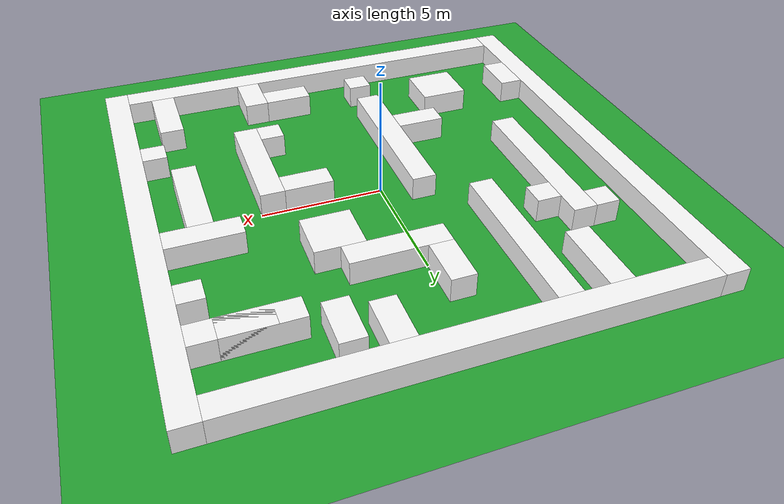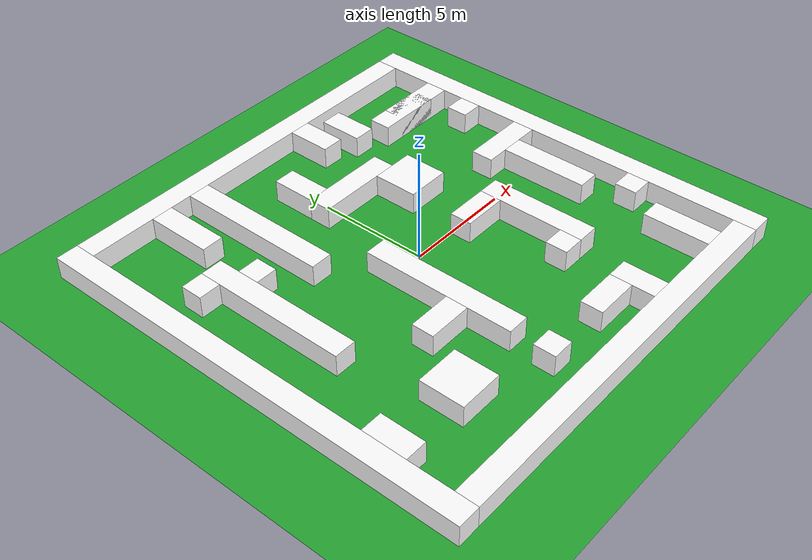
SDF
<?xml version="1.0"?>
<sdf version='1.10'>
  <world name='playground'>
    <physics name='1ms' type='ignored'>
      <max_step_size>0.005</max_step_size>
      <real_time_factor>1</real_time_factor>
      <real_time_update_rate>500</real_time_update_rate>
    </physics>
    <plugin name='gz::sim::systems::Physics' filename='gz-sim-physics-system'/>
    <plugin name='gz::sim::systems::UserCommands' filename='gz-sim-user-commands-system'/>
    <plugin name='gz::sim::systems::SceneBroadcaster' filename='gz-sim-scene-broadcaster-system'/>
    <plugin name='gz::sim::systems::Contact' filename='gz-sim-contact-system'/>
    <plugin filename="gz-sim-sensors-system" name="gz::sim::systems::Sensors">
          <render_engine>ogre2</render_engine>
    </plugin>
    <plugin filename="gz-sim-imu-system" name="gz::sim::systems::Imu"> </plugin>
    <gravity>0 0 -9.8000000000000007</gravity>
    <magnetic_field>5.5644999999999998e-06 2.2875799999999999e-05 -4.2388400000000002e-05</magnetic_field>
    <atmosphere type='adiabatic'/>
    <scene>
      <ambient>0.400000006 0.400000006 0.400000006 1</ambient>
      <background>0.699999988 0.699999988 0.699999988 1</background>
      <shadows>true</shadows>
    </scene>

    <model name='ground_plane'>
      <static>true</static>
      <link name='link'>
        <collision name='collision'>
          <geometry>
            <plane>
              <normal>0 0 1</normal>
              <size>100 100</size>
            </plane>
          </geometry>
          <surface>
            <friction>
              <ode/>
            </friction>
            <bounce/>
            <contact/>
          </surface>
        </collision>
        <visual name='visual'>
          <geometry>
            <plane>
              <normal>0 0 1</normal>
              <size>100 100</size>
            </plane>
          </geometry>
          <material>
            <script>
              <uri>file://media/materials/scripts/gazebo.material</uri>
              <name>Gazebo/Green</name>
            </script>
          </material>
        </visual>
        <pose>0 0 0 0 0 0</pose>
        <inertial>
          <pose>0 0 0 0 0 0</pose>
          <mass>1</mass>
          <inertia>
            <ixx>1</ixx>
            <ixy>0</ixy>
            <ixz>0</ixz>
            <iyy>1</iyy>
            <iyz>0</iyz>
            <izz>1</izz>
          </inertia>
        </inertial>
        <enable_wind>false</enable_wind>
      </link>
      <pose>0 0 0 0 0 0</pose>
      <self_collide>false</self_collide>
    </model>
    <model name='box_0'>
      <pose>9.5 0.0 0.5 0.0 0.0 0.0</pose>
      <link name='box_link'>
        <inertial>
          <inertia>
            <ixx>0.16666</ixx>
            <ixy>0</ixy>
            <ixz>0</ixz>
            <iyy>0.16666</iyy>
            <iyz>0</iyz>
            <izz>0.16666</izz>
          </inertia>
          <mass>1</mass>
          <pose>0 0 0 0 0 0</pose>
        </inertial>
        <collision name='box_collision'>
          <geometry>
            <box>
              <size>1 20 1</size>
            </box>
          </geometry>
          <surface>
            <friction>
              <ode/>
            </friction>
            <bounce/>
            <contact/>
          </surface>
        </collision>
        <visual name='box_visual'>
          <geometry>
            <box>
              <size>1 20 1</size>
            </box>
          </geometry>
          <material>
            <ambient>1 1 1 1</ambient>
            <diffuse>1 1 1 1</diffuse>
            <specular>1 1 1 1</specular>
          </material>
        </visual>
        <pose>0 0 0 0 0 0</pose>
        <enable_wind>false</enable_wind>
      </link>
      <static>true</static>
      <self_collide>false</self_collide>
    </model>
    <model name='box_1'>
      <pose>-9.5 0.0 0.5 0.0 0.0 0.0</pose>
      <link name='box_link'>
        <inertial>
          <inertia>
            <ixx>0.16666</ixx>
            <ixy>0</ixy>
            <ixz>0</ixz>
            <iyy>0.16666</iyy>
            <iyz>0</iyz>
            <izz>0.16666</izz>
          </inertia>
          <mass>1</mass>
          <pose>0 0 0 0 0 0</pose>
        </inertial>
        <collision name='box_collision'>
          <geometry>
            <box>
              <size>1 20 1</size>
            </box>
          </geometry>
          <surface>
            <friction>
              <ode/>
            </friction>
            <bounce/>
            <contact/>
          </surface>
        </collision>
        <visual name='box_visual'>
          <geometry>
            <box>
              <size>1 20 1</size>
            </box>
          </geometry>
          <material>
            <ambient>1 1 1 1</ambient>
            <diffuse>1 1 1 1</diffuse>
            <specular>1 1 1 1</specular>
          </material>
        </visual>
        <pose>0 0 0 0 0 0</pose>
        <enable_wind>false</enable_wind>
      </link>
      <static>true</static>
      <self_collide>false</self_collide>
    </model>
    <model name='box_2'>
      <pose>0.0 9.5 0.5 0.0 0.0 0.0</pose>
      <link name='box_link'>
        <inertial>
          <inertia>
            <ixx>0.16666</ixx>
            <ixy>0</ixy>
            <ixz>0</ixz>
            <iyy>0.16666</iyy>
            <iyz>0</iyz>
            <izz>0.16666</izz>
          </inertia>
          <mass>1</mass>
          <pose>0 0 0 0 0 0</pose>
        </inertial>
        <collision name='box_collision'>
          <geometry>
            <box>
              <size>18 1 1</size>
            </box>
          </geometry>
          <surface>
            <friction>
              <ode/>
            </friction>
            <bounce/>
            <contact/>
          </surface>
        </collision>
        <visual name='box_visual'>
          <geometry>
            <box>
              <size>18 1 1</size>
            </box>
          </geometry>
          <material>
            <ambient>1 1 1 1</ambient>
            <diffuse>1 1 1 1</diffuse>
            <specular>1 1 1 1</specular>
          </material>
        </visual>
        <pose>0 0 0 0 0 0</pose>
        <enable_wind>false</enable_wind>
      </link>
      <static>true</static>
      <self_collide>false</self_collide>
    </model>
    <model name='box_3'>
      <pose>0.0 -9.5 0.5 0.0 0.0 0.0</pose>
      <link name='box_link'>
        <inertial>
          <inertia>
            <ixx>0.16666</ixx>
            <ixy>0</ixy>
            <ixz>0</ixz>
            <iyy>0.16666</iyy>
            <iyz>0</iyz>
            <izz>0.16666</izz>
          </inertia>
          <mass>1</mass>
          <pose>0 0 0 0 0 0</pose>
        </inertial>
        <collision name='box_collision'>
          <geometry>
            <box>
              <size>18 1 1</size>
            </box>
          </geometry>
          <surface>
            <friction>
              <ode/>
            </friction>
            <bounce/>
            <contact/>
          </surface>
        </collision>
        <visual name='box_visual'>
          <geometry>
            <box>
              <size>18 1 1</size>
            </box>
          </geometry>
          <material>
            <ambient>1 1 1 1</ambient>
            <diffuse>1 1 1 1</diffuse>
            <specular>1 1 1 1</specular>
          </material>
        </visual>
        <pose>0 0 0 0 0 0</pose>
        <enable_wind>false</enable_wind>
      </link>
      <static>true</static>
      <self_collide>false</self_collide>
    </model>
    <model name='box_4'>
      <pose>-5.5 7.5 0.5 0.0 0.0 0.0</pose>
      <link name='box_link'>
        <inertial>
          <inertia>
            <ixx>0.16666</ixx>
            <ixy>0</ixy>
            <ixz>0</ixz>
            <iyy>0.16666</iyy>
            <iyz>0</iyz>
            <izz>0.16666</izz>
          </inertia>
          <mass>1</mass>
          <pose>0 0 0 0 0 0</pose>
        </inertial>
        <collision name='box_collision'>
          <geometry>
            <box>
              <size>1 3 1</size>
            </box>
          </geometry>
          <surface>
            <friction>
              <ode/>
            </friction>
            <bounce/>
            <contact/>
          </surface>
        </collision>
        <visual name='box_visual'>
          <geometry>
            <box>
              <size>1 3 1</size>
            </box>
          </geometry>
          <material>
            <ambient>1 1 1 1</ambient>
            <diffuse>1 1 1 1</diffuse>
            <specular>1 1 1 1</specular>
          </material>
        </visual>
        <pose>0 0 0 0 0 0</pose>
        <enable_wind>false</enable_wind>
      </link>
      <static>true</static>
      <self_collide>false</self_collide>
    </model>
    <model name='box_5'>
      <pose>-3.5 5.5 0.5 0.0 0.0 0.0</pose>
      <link name='box_link'>
        <inertial>
          <inertia>
            <ixx>0.16666</ixx>
            <ixy>0</ixy>
            <ixz>0</ixz>
            <iyy>0.16666</iyy>
            <iyz>0</iyz>
            <izz>0.16666</izz>
          </inertia>
          <mass>1</mass>
          <pose>0 0 0 0 0 0</pose>
        </inertial>
        <collision name='box_collision'>
          <geometry>
            <box>
              <size>1 7 1</size>
            </box>
          </geometry>
          <surface>
            <friction>
              <ode/>
            </friction>
            <bounce/>
            <contact/>
          </surface>
        </collision>
        <visual name='box_visual'>
          <geometry>
            <box>
              <size>1 7 1</size>
            </box>
          </geometry>
          <material>
            <ambient>1 1 1 1</ambient>
            <diffuse>1 1 1 1</diffuse>
            <specular>1 1 1 1</specular>
          </material>
        </visual>
        <pose>0 0 0 0 0 0</pose>
        <enable_wind>false</enable_wind>
      </link>
      <static>true</static>
      <self_collide>false</self_collide>
    </model>
    <model name='box_6'>
      <pose>-0.5 6.0 0.5 0.0 0.0 0.0</pose>
      <link name='box_link'>
        <inertial>
          <inertia>
            <ixx>0.16666</ixx>
            <ixy>0</ixy>
            <ixz>0</ixz>
            <iyy>0.16666</iyy>
            <iyz>0</iyz>
            <izz>0.16666</izz>
          </inertia>
          <mass>1</mass>
          <pose>0 0 0 0 0 0</pose>
        </inertial>
        <collision name='box_collision'>
          <geometry>
            <box>
              <size>1 2 1</size>
            </box>
          </geometry>
          <surface>
            <friction>
              <ode/>
            </friction>
            <bounce/>
            <contact/>
          </surface>
        </collision>
        <visual name='box_visual'>
          <geometry>
            <box>
              <size>1 2 1</size>
            </box>
          </geometry>
          <material>
            <ambient>1 1 1 1</ambient>
            <diffuse>1 1 1 1</diffuse>
            <specular>1 1 1 1</specular>
          </material>
        </visual>
        <pose>0 0 0 0 0 0</pose>
        <enable_wind>false</enable_wind>
      </link>
      <static>true</static>
      <self_collide>false</self_collide>
    </model>
    <model name='box_7'>
      <pose>2.5 8.0 0.5 0.0 0.0 0.0</pose>
      <link name='box_link'>
        <inertial>
          <inertia>
            <ixx>0.16666</ixx>
            <ixy>0</ixy>
            <ixz>0</ixz>
            <iyy>0.16666</iyy>
            <iyz>0</iyz>
            <izz>0.16666</izz>
          </inertia>
          <mass>1</mass>
          <pose>0 0 0 0 0 0</pose>
        </inertial>
        <collision name='box_collision'>
          <geometry>
            <box>
              <size>1 2 1</size>
            </box>
          </geometry>
          <surface>
            <friction>
              <ode/>
            </friction>
            <bounce/>
            <contact/>
          </surface>
        </collision>
        <visual name='box_visual'>
          <geometry>
            <box>
              <size>1 2 1</size>
            </box>
          </geometry>
          <material>
            <ambient>1 1 1 1</ambient>
            <diffuse>1 1 1 1</diffuse>
            <specular>1 1 1 1</specular>
          </material>
        </visual>
        <pose>0 0 0 0 0 0</pose>
        <enable_wind>false</enable_wind>
      </link>
      <static>true</static>
      <self_collide>false</self_collide>
    </model>
    <model name='box_8'>
      <pose>-6.5 1.5 0.5 0.0 0.0 0.0</pose>
      <link name='box_link'>
        <inertial>
          <inertia>
            <ixx>0.16666</ixx>
            <ixy>0</ixy>
            <ixz>0</ixz>
            <iyy>0.16666</iyy>
            <iyz>0</iyz>
            <izz>0.16666</izz>
          </inertia>
          <mass>1</mass>
          <pose>0 0 0 0 0 0</pose>
        </inertial>
        <collision name='box_collision'>
          <geometry>
            <box>
              <size>1 7 1</size>
            </box>
          </geometry>
          <surface>
            <friction>
              <ode/>
            </friction>
            <bounce/>
            <contact/>
          </surface>
        </collision>
        <visual name='box_visual'>
          <geometry>
            <box>
              <size>1 7 1</size>
            </box>
          </geometry>
          <material>
            <ambient>1 1 1 1</ambient>
            <diffuse>1 1 1 1</diffuse>
            <specular>1 1 1 1</specular>
          </material>
        </visual>
        <pose>0 0 0 0 0 0</pose>
        <enable_wind>false</enable_wind>
      </link>
      <static>true</static>
      <self_collide>false</self_collide>
    </model>
    <model name='box_9'>
      <pose>-1.5 -2.5 0.5 0.0 0.0 0.0</pose>
      <link name='box_link'>
        <inertial>
          <inertia>
            <ixx>0.16666</ixx>
            <ixy>0</ixy>
            <ixz>0</ixz>
            <iyy>0.16666</iyy>
            <iyz>0</iyz>
            <izz>0.16666</izz>
          </inertia>
          <mass>1</mass>
          <pose>0 0 0 0 0 0</pose>
        </inertial>
        <collision name='box_collision'>
          <geometry>
            <box>
              <size>1 7 1</size>
            </box>
          </geometry>
          <surface>
            <friction>
              <ode/>
            </friction>
            <bounce/>
            <contact/>
          </surface>
        </collision>
        <visual name='box_visual'>
          <geometry>
            <box>
              <size>1 7 1</size>
            </box>
          </geometry>
          <material>
            <ambient>1 1 1 1</ambient>
            <diffuse>1 1 1 1</diffuse>
            <specular>1 1 1 1</specular>
          </material>
        </visual>
        <pose>0 0 0 0 0 0</pose>
        <enable_wind>false</enable_wind>
      </link>
      <static>true</static>
      <self_collide>false</self_collide>
    </model>
    <model name='box_10'>
      <pose>4.5 -2.5 0.5 0.0 0.0 0.0</pose>
      <link name='box_link'>
        <inertial>
          <inertia>
            <ixx>0.16666</ixx>
            <ixy>0</ixy>
            <ixz>0</ixz>
            <iyy>0.16666</iyy>
            <iyz>0</iyz>
            <izz>0.16666</izz>
          </inertia>
          <mass>1</mass>
          <pose>0 0 0 0 0 0</pose>
        </inertial>
        <collision name='box_collision'>
          <geometry>
            <box>
              <size>1 5 1</size>
            </box>
          </geometry>
          <surface>
            <friction>
              <ode/>
            </friction>
            <bounce/>
            <contact/>
          </surface>
        </collision>
        <visual name='box_visual'>
          <geometry>
            <box>
              <size>1 5 1</size>
            </box>
          </geometry>
          <material>
            <ambient>1 1 1 1</ambient>
            <diffuse>1 1 1 1</diffuse>
            <specular>1 1 1 1</specular>
          </material>
        </visual>
        <pose>0 0 0 0 0 0</pose>
        <enable_wind>false</enable_wind>
      </link>
      <static>true</static>
      <self_collide>false</self_collide>
    </model>
    <model name='box_11'>
      <pose>7.5 -1.0 0.5 0.0 0.0 0.0</pose>
      <link name='box_link'>
        <inertial>
          <inertia>
            <ixx>0.16666</ixx>
            <ixy>0</ixy>
            <ixz>0</ixz>
            <iyy>0.16666</iyy>
            <iyz>0</iyz>
            <izz>0.16666</izz>
          </inertia>
          <mass>1</mass>
          <pose>0 0 0 0 0 0</pose>
        </inertial>
        <collision name='box_collision'>
          <geometry>
            <box>
              <size>1 4 1</size>
            </box>
          </geometry>
          <surface>
            <friction>
              <ode/>
            </friction>
            <bounce/>
            <contact/>
          </surface>
        </collision>
        <visual name='box_visual'>
          <geometry>
            <box>
              <size>1 4 1</size>
            </box>
          </geometry>
          <material>
            <ambient>1 1 1 1</ambient>
            <diffuse>1 1 1 1</diffuse>
            <specular>1 1 1 1</specular>
          </material>
        </visual>
        <pose>0 0 0 0 0 0</pose>
        <enable_wind>false</enable_wind>
      </link>
      <static>true</static>
      <self_collide>false</self_collide>
    </model>
    <model name='box_12'>
      <pose>7.5 -7.5 0.5 0.0 0.0 0.0</pose>
      <link name='box_link'>
        <inertial>
          <inertia>
            <ixx>0.16666</ixx>
            <ixy>0</ixy>
            <ixz>0</ixz>
            <iyy>0.16666</iyy>
            <iyz>0</iyz>
            <izz>0.16666</izz>
          </inertia>
          <mass>1</mass>
          <pose>0 0 0 0 0 0</pose>
        </inertial>
        <collision name='box_collision'>
          <geometry>
            <box>
              <size>1 3 1</size>
            </box>
          </geometry>
          <surface>
            <friction>
              <ode/>
            </friction>
            <bounce/>
            <contact/>
          </surface>
        </collision>
        <visual name='box_visual'>
          <geometry>
            <box>
              <size>1 3 1</size>
            </box>
          </geometry>
          <material>
            <ambient>1 1 1 1</ambient>
            <diffuse>1 1 1 1</diffuse>
            <specular>1 1 1 1</specular>
          </material>
        </visual>
        <pose>0 0 0 0 0 0</pose>
        <enable_wind>false</enable_wind>
      </link>
      <static>true</static>
      <self_collide>false</self_collide>
    </model>
    <model name='box_13'>
      <pose>3.0 3.0 0.5 0.0 0.0 0.0</pose>
      <link name='box_link'>
        <inertial>
          <inertia>
            <ixx>0.16666</ixx>
            <ixy>0</ixy>
            <ixz>0</ixz>
            <iyy>0.16666</iyy>
            <iyz>0</iyz>
            <izz>0.16666</izz>
          </inertia>
          <mass>1</mass>
          <pose>0 0 0 0 0 0</pose>
        </inertial>
        <collision name='box_collision'>
          <geometry>
            <box>
              <size>2 2 1</size>
            </box>
          </geometry>
          <surface>
            <friction>
              <ode/>
            </friction>
            <bounce/>
            <contact/>
          </surface>
        </collision>
        <visual name='box_visual'>
          <geometry>
            <box>
              <size>2 2 1</size>
            </box>
          </geometry>
          <material>
            <ambient>1 1 1 1</ambient>
            <diffuse>1 1 1 1</diffuse>
            <specular>1 1 1 1</specular>
          </material>
        </visual>
        <pose>0 0 0 0 0 0</pose>
        <enable_wind>false</enable_wind>
      </link>
      <static>true</static>
      <self_collide>false</self_collide>
    </model>
    <model name='box_14'>
      <pose>-5.0 -6.0 0.5 0.0 0.0 0.0</pose>
      <link name='box_link'>
        <inertial>
          <inertia>
            <ixx>0.16666</ixx>
            <ixy>0</ixy>
            <ixz>0</ixz>
            <iyy>0.16666</iyy>
            <iyz>0</iyz>
            <izz>0.16666</izz>
          </inertia>
          <mass>1</mass>
          <pose>0 0 0 0 0 0</pose>
        </inertial>
        <collision name='box_collision'>
          <geometry>
            <box>
              <size>2 2 1</size>
            </box>
          </geometry>
          <surface>
            <friction>
              <ode/>
            </friction>
            <bounce/>
            <contact/>
          </surface>
        </collision>
        <visual name='box_visual'>
          <geometry>
            <box>
              <size>2 2 1</size>
            </box>
          </geometry>
          <material>
            <ambient>1 1 1 1</ambient>
            <diffuse>1 1 1 1</diffuse>
            <specular>1 1 1 1</specular>
          </material>
        </visual>
        <pose>0 0 0 0 0 0</pose>
        <enable_wind>false</enable_wind>
      </link>
      <static>true</static>
      <self_collide>false</self_collide>
    </model>
    <model name='box_15'>
      <pose>-8.5 -6.0 0.5 0.0 0.0 0.0</pose>
      <link name='box_link'>
        <inertial>
          <inertia>
            <ixx>0.16666</ixx>
            <ixy>0</ixy>
            <ixz>0</ixz>
            <iyy>0.16666</iyy>
            <iyz>0</iyz>
            <izz>0.16666</izz>
          </inertia>
          <mass>1</mass>
          <pose>0 0 0 0 0 0</pose>
        </inertial>
        <collision name='box_collision'>
          <geometry>
            <box>
              <size>1 2 1</size>
            </box>
          </geometry>
          <surface>
            <friction>
              <ode/>
            </friction>
            <bounce/>
            <contact/>
          </surface>
        </collision>
        <visual name='box_visual'>
          <geometry>
            <box>
              <size>1 2 1</size>
            </box>
          </geometry>
          <material>
            <ambient>1 1 1 1</ambient>
            <diffuse>1 1 1 1</diffuse>
            <specular>1 1 1 1</specular>
          </material>
        </visual>
        <pose>0 0 0 0 0 0</pose>
        <enable_wind>false</enable_wind>
      </link>
      <static>true</static>
      <self_collide>false</self_collide>
    </model>
    <model name='box_16'>
      <pose>-1.5 -7.5 0.5 0.0 0.0 0.0</pose>
      <link name='box_link'>
        <inertial>
          <inertia>
            <ixx>0.16666</ixx>
            <ixy>0</ixy>
            <ixz>0</ixz>
            <iyy>0.16666</iyy>
            <iyz>0</iyz>
            <izz>0.16666</izz>
          </inertia>
          <mass>1</mass>
          <pose>0 0 0 0 0 0</pose>
        </inertial>
        <collision name='box_collision'>
          <geometry>
            <box>
              <size>1 1 1</size>
            </box>
          </geometry>
          <surface>
            <friction>
              <ode/>
            </friction>
            <bounce/>
            <contact/>
          </surface>
        </collision>
        <visual name='box_visual'>
          <geometry>
            <box>
              <size>1 1 1</size>
            </box>
          </geometry>
          <material>
            <ambient>1 1 1 1</ambient>
            <diffuse>1 1 1 1</diffuse>
            <specular>1 1 1 1</specular>
          </material>
        </visual>
        <pose>0 0 0 0 0 0</pose>
        <enable_wind>false</enable_wind>
      </link>
      <static>true</static>
      <self_collide>false</self_collide>
    </model>
    <model name='box_17'>
      <pose>3.5 -8.0 0.5 0.0 0.0 0.0</pose>
      <link name='box_link'>
        <inertial>
          <inertia>
            <ixx>0.16666</ixx>
            <ixy>0</ixy>
            <ixz>0</ixz>
            <iyy>0.16666</iyy>
            <iyz>0</iyz>
            <izz>0.16666</izz>
          </inertia>
          <mass>1</mass>
          <pose>0 0 0 0 0 0</pose>
        </inertial>
        <collision name='box_collision'>
          <geometry>
            <box>
              <size>1 2 1</size>
            </box>
          </geometry>
          <surface>
            <friction>
              <ode/>
            </friction>
            <bounce/>
            <contact/>
          </surface>
        </collision>
        <visual name='box_visual'>
          <geometry>
            <box>
              <size>1 2 1</size>
            </box>
          </geometry>
          <material>
            <ambient>1 1 1 1</ambient>
            <diffuse>1 1 1 1</diffuse>
            <specular>1 1 1 1</specular>
          </material>
        </visual>
        <pose>0 0 0 0 0 0</pose>
        <enable_wind>false</enable_wind>
      </link>
      <static>true</static>
      <self_collide>false</self_collide>
    </model>
    <model name='box_18'>
      <pose>4.0 7.5 0.5 0.0 0.0 0.0</pose>
      <link name='box_link'>
        <inertial>
          <inertia>
            <ixx>0.16666</ixx>
            <ixy>0</ixy>
            <ixz>0</ixz>
            <iyy>0.16666</iyy>
            <iyz>0</iyz>
            <izz>0.16666</izz>
          </inertia>
          <mass>1</mass>
          <pose>0 0 0 0 0 0</pose>
        </inertial>
        <collision name='box_collision'>
          <geometry>
            <box>
              <size>1 2 1</size>
            </box>
          </geometry>
          <surface>
            <friction>
              <ode/>
            </friction>
            <bounce/>
            <contact/>
          </surface>
        </collision>
        <visual name='box_visual'>
          <geometry>
            <box>
              <size>1 2 1</size>
            </box>
          </geometry>
          <material>
            <ambient>1 1 1 1</ambient>
            <diffuse>1 1 1 1</diffuse>
            <specular>1 1 1 1</specular>
          </material>
        </visual>
        <pose>0 0 0 0 0 0</pose>
        <enable_wind>false</enable_wind>
      </link>
      <static>true</static>
      <self_collide>false</self_collide>
    </model>
    <model name='box_19'>
      <pose>-7.5 4.5 0.5 0.0 0.0 0.0</pose>
      <link name='box_link'>
        <inertial>
          <inertia>
            <ixx>0.16666</ixx>
            <ixy>0</ixy>
            <ixz>0</ixz>
            <iyy>0.16666</iyy>
            <iyz>0</iyz>
            <izz>0.16666</izz>
          </inertia>
          <mass>1</mass>
          <pose>0 0 0 0 0 0</pose>
        </inertial>
        <collision name='box_collision'>
          <geometry>
            <box>
              <size>1 1 1</size>
            </box>
          </geometry>
          <surface>
            <friction>
              <ode/>
            </friction>
            <bounce/>
            <contact/>
          </surface>
        </collision>
        <visual name='box_visual'>
          <geometry>
            <box>
              <size>1 1 1</size>
            </box>
          </geometry>
          <material>
            <ambient>1 1 1 1</ambient>
            <diffuse>1 1 1 1</diffuse>
            <specular>1 1 1 1</specular>
          </material>
        </visual>
        <pose>0 0 0 0 0 0</pose>
        <enable_wind>false</enable_wind>
      </link>
      <static>true</static>
      <self_collide>false</self_collide>
    </model>
    <model name='box_20'>
      <pose>-5.5 3.5 0.5 0.0 0.0 0.0</pose>
      <link name='box_link'>
        <inertial>
          <inertia>
            <ixx>0.16666</ixx>
            <ixy>0</ixy>
            <ixz>0</ixz>
            <iyy>0.16666</iyy>
            <iyz>0</iyz>
            <izz>0.16666</izz>
          </inertia>
          <mass>1</mass>
          <pose>0 0 0 0 0 0</pose>
        </inertial>
        <collision name='box_collision'>
          <geometry>
            <box>
              <size>1 1 1</size>
            </box>
          </geometry>
          <surface>
            <friction>
              <ode/>
            </friction>
            <bounce/>
            <contact/>
          </surface>
        </collision>
        <visual name='box_visual'>
          <geometry>
            <box>
              <size>1 1 1</size>
            </box>
          </geometry>
          <material>
            <ambient>1 1 1 1</ambient>
            <diffuse>1 1 1 1</diffuse>
            <specular>1 1 1 1</specular>
          </material>
        </visual>
        <pose>0 0 0 0 0 0</pose>
        <enable_wind>false</enable_wind>
      </link>
      <static>true</static>
      <self_collide>false</self_collide>
    </model>
    <model name='box_21'>
      <pose>3.5 -4.5 0.5 0.0 0.0 0.0</pose>
      <link name='box_link'>
        <inertial>
          <inertia>
            <ixx>0.16666</ixx>
            <ixy>0</ixy>
            <ixz>0</ixz>
            <iyy>0.16666</iyy>
            <iyz>0</iyz>
            <izz>0.16666</izz>
          </inertia>
          <mass>1</mass>
          <pose>0 0 0 0 0 0</pose>
        </inertial>
        <collision name='box_collision'>
          <geometry>
            <box>
              <size>1 1 1</size>
            </box>
          </geometry>
          <surface>
            <friction>
              <ode/>
            </friction>
            <bounce/>
            <contact/>
          </surface>
        </collision>
        <visual name='box_visual'>
          <geometry>
            <box>
              <size>1 1 1</size>
            </box>
          </geometry>
          <material>
            <ambient>1 1 1 1</ambient>
            <diffuse>1 1 1 1</diffuse>
            <specular>1 1 1 1</specular>
          </material>
        </visual>
        <pose>0 0 0 0 0 0</pose>
        <enable_wind>false</enable_wind>
      </link>
      <static>true</static>
      <self_collide>false</self_collide>
    </model>
    <model name='box_22'>
      <pose>8.5 4.5 0.5 0.0 0.0 0.0</pose>
      <link name='box_link'>
        <inertial>
          <inertia>
            <ixx>0.16666</ixx>
            <ixy>0</ixy>
            <ixz>0</ixz>
            <iyy>0.16666</iyy>
            <iyz>0</iyz>
            <izz>0.16666</izz>
          </inertia>
          <mass>1</mass>
          <pose>0 0 0 0 0 0</pose>
        </inertial>
        <collision name='box_collision'>
          <geometry>
            <box>
              <size>1 1 1</size>
            </box>
          </geometry>
          <surface>
            <friction>
              <ode/>
            </friction>
            <bounce/>
            <contact/>
          </surface>
        </collision>
        <visual name='box_visual'>
          <geometry>
            <box>
              <size>1 1 1</size>
            </box>
          </geometry>
          <material>
            <ambient>1 1 1 1</ambient>
            <diffuse>1 1 1 1</diffuse>
            <specular>1 1 1 1</specular>
          </material>
        </visual>
        <pose>0 0 0 0 0 0</pose>
        <enable_wind>false</enable_wind>
      </link>
      <static>true</static>
      <self_collide>false</self_collide>
    </model>
    <model name='box_23'>
      <pose>8.5 -4.5 0.5 0.0 0.0 0.0</pose>
      <link name='box_link'>
        <inertial>
          <inertia>
            <ixx>0.16666</ixx>
            <ixy>0</ixy>
            <ixz>0</ixz>
            <iyy>0.16666</iyy>
            <iyz>0</iyz>
            <izz>0.16666</izz>
          </inertia>
          <mass>1</mass>
          <pose>0 0 0 0 0 0</pose>
        </inertial>
        <collision name='box_collision'>
          <geometry>
            <box>
              <size>1 1 1</size>
            </box>
          </geometry>
          <surface>
            <friction>
              <ode/>
            </friction>
            <bounce/>
            <contact/>
          </surface>
        </collision>
        <visual name='box_visual'>
          <geometry>
            <box>
              <size>1 1 1</size>
            </box>
          </geometry>
          <material>
            <ambient>1 1 1 1</ambient>
            <diffuse>1 1 1 1</diffuse>
            <specular>1 1 1 1</specular>
          </material>
        </visual>
        <pose>0 0 0 0 0 0</pose>
        <enable_wind>false</enable_wind>
      </link>
      <static>true</static>
      <self_collide>false</self_collide>
    </model>
    <model name='box_24'>
      <pose>7.0 6.5 0.5 0.0 0.0 0.0</pose>
      <link name='box_link'>
        <inertial>
          <inertia>
            <ixx>0.16666</ixx>
            <ixy>0</ixy>
            <ixz>0</ixz>
            <iyy>0.16666</iyy>
            <iyz>0</iyz>
            <izz>0.16666</izz>
          </inertia>
          <mass>1</mass>
          <pose>0 0 0 0 0 0</pose>
        </inertial>
        <collision name='box_collision'>
          <geometry>
            <box>
              <size>2 1 1</size>
            </box>
          </geometry>
          <surface>
            <friction>
              <ode/>
            </friction>
            <bounce/>
            <contact/>
          </surface>
        </collision>
        <visual name='box_visual'>
          <geometry>
            <box>
              <size>2 1 1</size>
            </box>
          </geometry>
          <material>
            <ambient>1 1 1 1</ambient>
            <diffuse>1 1 1 1</diffuse>
            <specular>1 1 1 1</specular>
          </material>
        </visual>
        <pose>0 0 0 0 0 0</pose>
        <enable_wind>false</enable_wind>
      </link>
      <static>true</static>
      <self_collide>false</self_collide>
    </model>
    <model name='box_25'>
      <pose>1.0 4.5 0.5 0.0 0.0 0.0</pose>
      <link name='box_link'>
        <inertial>
          <inertia>
            <ixx>0.16666</ixx>
            <ixy>0</ixy>
            <ixz>0</ixz>
            <iyy>0.16666</iyy>
            <iyz>0</iyz>
            <izz>0.16666</izz>
          </inertia>
          <mass>1</mass>
          <pose>0 0 0 0 0 0</pose>
        </inertial>
        <collision name='box_collision'>
          <geometry>
            <box>
              <size>4 1 1</size>
            </box>
          </geometry>
          <surface>
            <friction>
              <ode/>
            </friction>
            <bounce/>
            <contact/>
          </surface>
        </collision>
        <visual name='box_visual'>
          <geometry>
            <box>
              <size>4 1 1</size>
            </box>
          </geometry>
          <material>
            <ambient>1 1 1 1</ambient>
            <diffuse>1 1 1 1</diffuse>
            <specular>1 1 1 1</specular>
          </material>
        </visual>
        <pose>0 0 0 0 0 0</pose>
        <enable_wind>false</enable_wind>
      </link>
      <static>true</static>
      <self_collide>false</self_collide>
    </model>
    <model name='box_26'>
      <pose>7.0 6.5 0.5 0.0 0.0 0.0</pose>
      <link name='box_link'>
        <inertial>
          <inertia>
            <ixx>0.16666</ixx>
            <ixy>0</ixy>
            <ixz>0</ixz>
            <iyy>0.16666</iyy>
            <iyz>0</iyz>
            <izz>0.16666</izz>
          </inertia>
          <mass>1</mass>
          <pose>0 0 0 0 0 0</pose>
        </inertial>
        <collision name='box_collision'>
          <geometry>
            <box>
              <size>4 1 1</size>
            </box>
          </geometry>
          <surface>
            <friction>
              <ode/>
            </friction>
            <bounce/>
            <contact/>
          </surface>
        </collision>
        <visual name='box_visual'>
          <geometry>
            <box>
              <size>4 1 1</size>
            </box>
          </geometry>
          <material>
            <ambient>1 1 1 1</ambient>
            <diffuse>1 1 1 1</diffuse>
            <specular>1 1 1 1</specular>
          </material>
        </visual>
        <pose>0 0 0 0 0 0</pose>
        <enable_wind>false</enable_wind>
      </link>
      <static>true</static>
      <self_collide>false</self_collide>
    </model>
    <model name='box_27'>
      <pose>7.5 1.5 0.5 0.0 0.0 0.0</pose>
      <link name='box_link'>
        <inertial>
          <inertia>
            <ixx>0.16666</ixx>
            <ixy>0</ixy>
            <ixz>0</ixz>
            <iyy>0.16666</iyy>
            <iyz>0</iyz>
            <izz>0.16666</izz>
          </inertia>
          <mass>1</mass>
          <pose>0 0 0 0 0 0</pose>
        </inertial>
        <collision name='box_collision'>
          <geometry>
            <box>
              <size>3 1 1</size>
            </box>
          </geometry>
          <surface>
            <friction>
              <ode/>
            </friction>
            <bounce/>
            <contact/>
          </surface>
        </collision>
        <visual name='box_visual'>
          <geometry>
            <box>
              <size>3 1 1</size>
            </box>
          </geometry>
          <material>
            <ambient>1 1 1 1</ambient>
            <diffuse>1 1 1 1</diffuse>
            <specular>1 1 1 1</specular>
          </material>
        </visual>
        <pose>0 0 0 0 0 0</pose>
        <enable_wind>false</enable_wind>
      </link>
      <static>true</static>
      <self_collide>false</self_collide>
    </model>
    <model name='box_28'>
      <pose>3.0 -0.5 0.5 0.0 0.0 0.0</pose>
      <link name='box_link'>
        <inertial>
          <inertia>
            <ixx>0.16666</ixx>
            <ixy>0</ixy>
            <ixz>0</ixz>
            <iyy>0.16666</iyy>
            <iyz>0</iyz>
            <izz>0.16666</izz>
          </inertia>
          <mass>1</mass>
          <pose>0 0 0 0 0 0</pose>
        </inertial>
        <collision name='box_collision'>
          <geometry>
            <box>
              <size>2 1 1</size>
            </box>
          </geometry>
          <surface>
            <friction>
              <ode/>
            </friction>
            <bounce/>
            <contact/>
          </surface>
        </collision>
        <visual name='box_visual'>
          <geometry>
            <box>
              <size>2 1 1</size>
            </box>
          </geometry>
          <material>
            <ambient>1 1 1 1</ambient>
            <diffuse>1 1 1 1</diffuse>
            <specular>1 1 1 1</specular>
          </material>
        </visual>
        <pose>0 0 0 0 0 0</pose>
        <enable_wind>false</enable_wind>
      </link>
      <static>true</static>
      <self_collide>false</self_collide>
    </model>
    <model name='box_29'>
      <pose>2.0 -7.5 0.5 0.0 0.0 0.0</pose>
      <link name='box_link'>
        <inertial>
          <inertia>
            <ixx>0.16666</ixx>
            <ixy>0</ixy>
            <ixz>0</ixz>
            <iyy>0.16666</iyy>
            <iyz>0</iyz>
            <izz>0.16666</izz>
          </inertia>
          <mass>1</mass>
          <pose>0 0 0 0 0 0</pose>
        </inertial>
        <collision name='box_collision'>
          <geometry>
            <box>
              <size>2 1 1</size>
            </box>
          </geometry>
          <surface>
            <friction>
              <ode/>
            </friction>
            <bounce/>
            <contact/>
          </surface>
        </collision>
        <visual name='box_visual'>
          <geometry>
            <box>
              <size>2 1 1</size>
            </box>
          </geometry>
          <material>
            <ambient>1 1 1 1</ambient>
            <diffuse>1 1 1 1</diffuse>
            <specular>1 1 1 1</specular>
          </material>
        </visual>
        <pose>0 0 0 0 0 0</pose>
        <enable_wind>false</enable_wind>
      </link>
      <static>true</static>
      <self_collide>false</self_collide>
    </model>
    <model name='box_30'>
      <pose>-3.0 -3.5 0.5 0.0 0.0 0.0</pose>
      <link name='box_link'>
        <inertial>
          <inertia>
            <ixx>0.16666</ixx>
            <ixy>0</ixy>
            <ixz>0</ixz>
            <iyy>0.16666</iyy>
            <iyz>0</iyz>
            <izz>0.16666</izz>
          </inertia>
          <mass>1</mass>
          <pose>0 0 0 0 0 0</pose>
        </inertial>
        <collision name='box_collision'>
          <geometry>
            <box>
              <size>2 1 1</size>
            </box>
          </geometry>
          <surface>
            <friction>
              <ode/>
            </friction>
            <bounce/>
            <contact/>
          </surface>
        </collision>
        <visual name='box_visual'>
          <geometry>
            <box>
              <size>2 1 1</size>
            </box>
          </geometry>
          <material>
            <ambient>1 1 1 1</ambient>
            <diffuse>1 1 1 1</diffuse>
            <specular>1 1 1 1</specular>
          </material>
        </visual>
        <pose>0 0 0 0 0 0</pose>
        <enable_wind>false</enable_wind>
      </link>
      <static>true</static>
      <self_collide>false</self_collide>
    </model>
    <light name='sun' type='directional'>
      <pose>0 0 10 0 0 0</pose>
      <cast_shadows>true</cast_shadows>
      <intensity>1</intensity>
      <direction>-0.5 0.10000000000000001 -0.90000000000000002</direction>
      <diffuse>0.800000012 0.800000012 0.800000012 1</diffuse>
      <specular>0.200000003 0.200000003 0.200000003 1</specular>
      <attenuation>
        <range>1000</range>
        <linear>0.01</linear>
        <constant>0.90000000000000002</constant>
        <quadratic>0.001</quadratic>
      </attenuation>
      <spot>
        <inner_angle>0</inner_angle>
        <outer_angle>0</outer_angle>
        <falloff>0</falloff>
      </spot>
    </light>

  </world>
</sdf>
